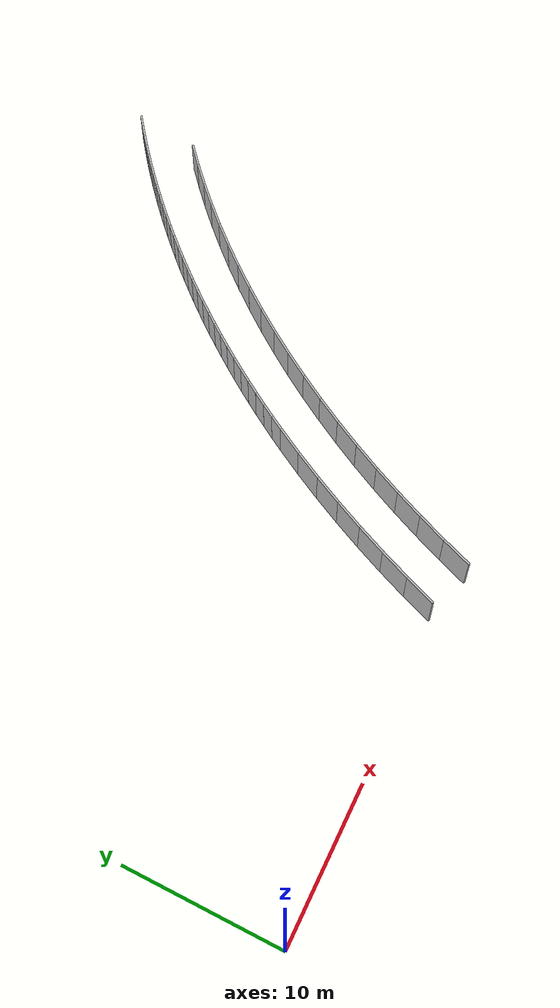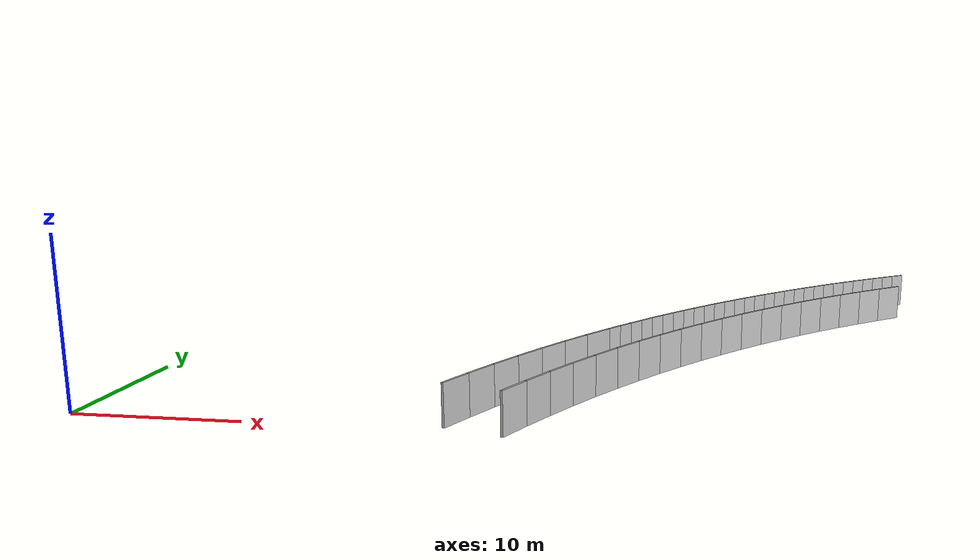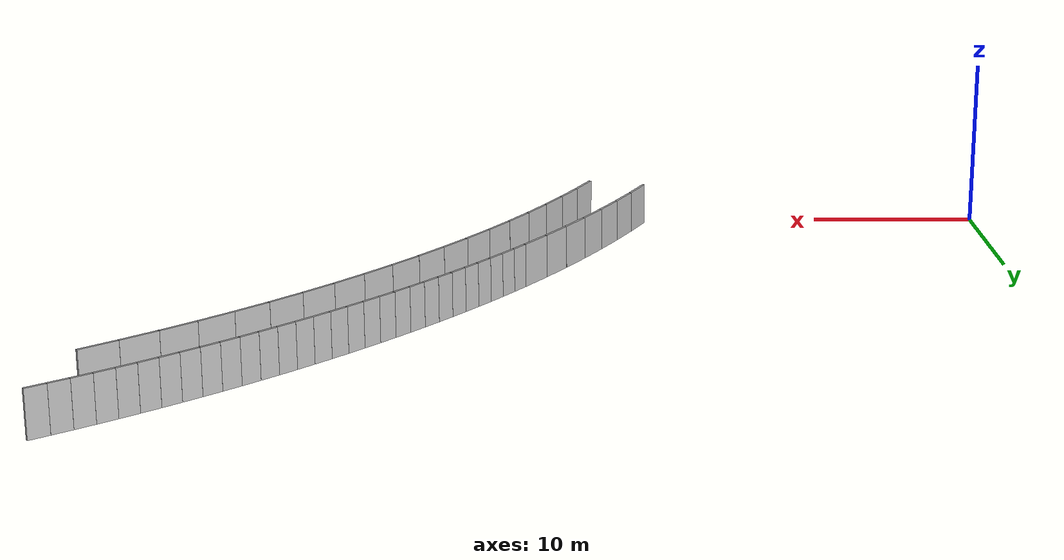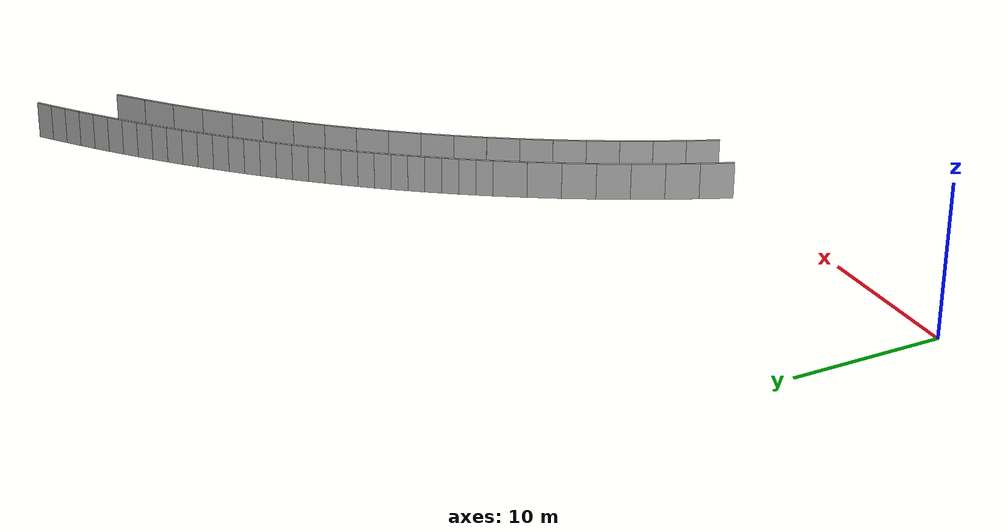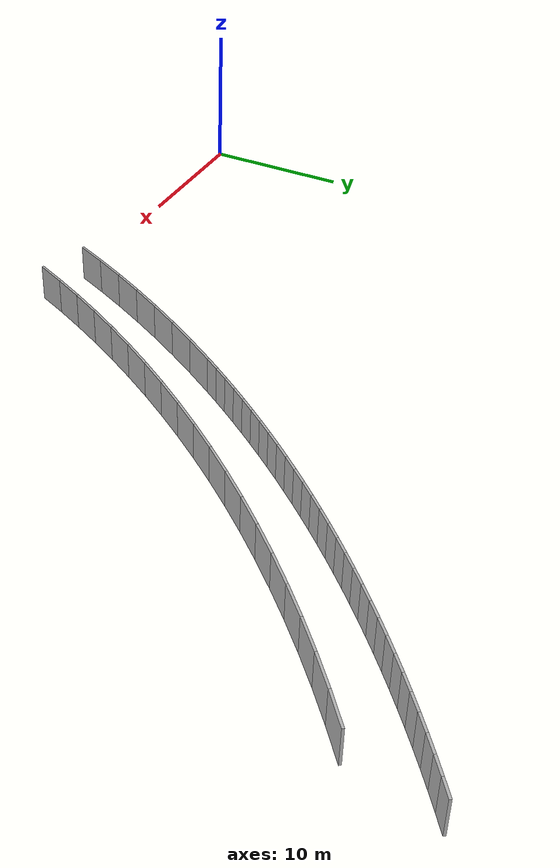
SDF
<?xml version="1.0" ?>
<sdf version="1.6">
  <model name="sps_1204">
    <pose frame="">0 0 0 0 -0 0</pose>
    <static>1</static>
    <self_collide>0</self_collide>
    <allow_auto_disable>0</allow_auto_disable>
    <link name="Wall1617">
      <kinematic>0</kinematic>
      <gravity>1</gravity>
      <self_collide>0</self_collide>
      <collision name="collision">
        <geometry>
          <box>
            <size>2.22094 0.15 2.5</size>
          </box>
        </geometry>
        <pose frame="">0 0 0 0 -0 0</pose>
      </collision>
      <visual name="visual">
        <geometry>
          <box>
            <size>2.22094 0.15 2.5</size>
          </box>
        </geometry>
        <pose frame="">0 0 0 0 -0 0</pose>
        <cast_shadows>1</cast_shadows>
        <transparency>0.0</transparency>
      </visual>
      <pose frame="">21.4795 1.55992 1.25 0 -0 1.16072</pose>
    </link>
    <link name="Wall1618">
      <kinematic>0</kinematic>
      <gravity>1</gravity>
      <self_collide>0</self_collide>
      <collision name="collision">
        <geometry>
          <box>
            <size>2.22094 0.15 2.5</size>
          </box>
        </geometry>
        <pose frame="">0 0 0 0 -0 0</pose>
      </collision>
      <visual name="visual">
        <geometry>
          <box>
            <size>2.22094 0.15 2.5</size>
          </box>
        </geometry>
        <pose frame="">0 0 0 0 -0 0</pose>
        <cast_shadows>1</cast_shadows>
        <transparency>0.0</transparency>
      </visual>
      <pose frame="">22.3906 3.58522 1.25 0 -0 1.13547</pose>
    </link>
    <link name="Wall1619">
      <kinematic>0</kinematic>
      <gravity>1</gravity>
      <self_collide>0</self_collide>
      <collision name="collision">
        <geometry>
          <box>
            <size>2.22085 0.15 2.5</size>
          </box>
        </geometry>
        <pose frame="">0 0 0 0 -0 0</pose>
      </collision>
      <visual name="visual">
        <geometry>
          <box>
            <size>2.22085 0.15 2.5</size>
          </box>
        </geometry>
        <pose frame="">0 0 0 0 -0 0</pose>
        <cast_shadows>1</cast_shadows>
        <transparency>0.0</transparency>
      </visual>
      <pose frame="">23.3524 5.58681 1.25 0 -0 1.11017</pose>
    </link>
    <link name="Wall1620">
      <kinematic>0</kinematic>
      <gravity>1</gravity>
      <self_collide>0</self_collide>
      <collision name="collision">
        <geometry>
          <box>
            <size>2.2209 0.15 2.5</size>
          </box>
        </geometry>
        <pose frame="">0 0 0 0 -0 0</pose>
      </collision>
      <visual name="visual">
        <geometry>
          <box>
            <size>2.2209 0.15 2.5</size>
          </box>
        </geometry>
        <pose frame="">0 0 0 0 -0 0</pose>
        <cast_shadows>1</cast_shadows>
        <transparency>0.0</transparency>
      </visual>
      <pose frame="">24.3646 7.5634 1.25 0 -0 1.08486</pose>
    </link>
    <link name="Wall1621">
      <kinematic>0</kinematic>
      <gravity>1</gravity>
      <self_collide>0</self_collide>
      <collision name="collision">
        <geometry>
          <box>
            <size>2.22102 0.15 2.5</size>
          </box>
        </geometry>
        <pose frame="">0 0 0 0 -0 0</pose>
      </collision>
      <visual name="visual">
        <geometry>
          <box>
            <size>2.22102 0.15 2.5</size>
          </box>
        </geometry>
        <pose frame="">0 0 0 0 -0 0</pose>
        <cast_shadows>1</cast_shadows>
        <transparency>0.0</transparency>
      </visual>
      <pose frame="">25.4264 9.5139 1.25 0 -0 1.0597</pose>
    </link>
    <link name="Wall1622">
      <kinematic>0</kinematic>
      <gravity>1</gravity>
      <self_collide>0</self_collide>
      <collision name="collision">
        <geometry>
          <box>
            <size>2.22108 0.15 2.5</size>
          </box>
        </geometry>
        <pose frame="">0 0 0 0 -0 0</pose>
      </collision>
      <visual name="visual">
        <geometry>
          <box>
            <size>2.22108 0.15 2.5</size>
          </box>
        </geometry>
        <pose frame="">0 0 0 0 -0 0</pose>
        <cast_shadows>1</cast_shadows>
        <transparency>0.0</transparency>
      </visual>
      <pose frame="">26.5371 11.4371 1.25 0 -0 1.03443</pose>
    </link>
    <link name="Wall1623">
      <kinematic>0</kinematic>
      <gravity>1</gravity>
      <self_collide>0</self_collide>
      <collision name="collision">
        <geometry>
          <box>
            <size>2.22088 0.15 2.5</size>
          </box>
        </geometry>
        <pose frame="">0 0 0 0 -0 0</pose>
      </collision>
      <visual name="visual">
        <geometry>
          <box>
            <size>2.22088 0.15 2.5</size>
          </box>
        </geometry>
        <pose frame="">0 0 0 0 -0 0</pose>
        <cast_shadows>1</cast_shadows>
        <transparency>0.0</transparency>
      </visual>
      <pose frame="">27.6959 13.3316 1.25 0 -0 1.00925</pose>
    </link>
    <link name="Wall1624">
      <kinematic>0</kinematic>
      <gravity>1</gravity>
      <self_collide>0</self_collide>
      <collision name="collision">
        <geometry>
          <box>
            <size>1.11048 0.15 2.5</size>
          </box>
        </geometry>
        <pose frame="">0 0 0 0 -0 0</pose>
      </collision>
      <visual name="visual">
        <geometry>
          <box>
            <size>1.11048 0.15 2.5</size>
          </box>
        </geometry>
        <pose frame="">0 0 0 0 -0 0</pose>
        <cast_shadows>1</cast_shadows>
        <transparency>0.0</transparency>
      </visual>
      <pose frame="">28.5918 14.7358 1.25 0 -0 0.990324</pose>
    </link>
    <link name="Wall1625">
      <kinematic>0</kinematic>
      <gravity>1</gravity>
      <self_collide>0</self_collide>
      <collision name="collision">
        <geometry>
          <box>
            <size>1.11035 0.15 2.5</size>
          </box>
        </geometry>
        <pose frame="">0 0 0 0 -0 0</pose>
      </collision>
      <visual name="visual">
        <geometry>
          <box>
            <size>1.11035 0.15 2.5</size>
          </box>
        </geometry>
        <pose frame="">0 0 0 0 -0 0</pose>
        <cast_shadows>1</cast_shadows>
        <transparency>0.0</transparency>
      </visual>
      <pose frame="">29.2067 15.6604 1.25 0 -0 0.977503</pose>
    </link>
    <link name="Wall1626">
      <kinematic>0</kinematic>
      <gravity>1</gravity>
      <self_collide>0</self_collide>
      <collision name="collision">
        <geometry>
          <box>
            <size>1.11049 0.15 2.5</size>
          </box>
        </geometry>
        <pose frame="">0 0 0 0 -0 0</pose>
      </collision>
      <visual name="visual">
        <geometry>
          <box>
            <size>1.11049 0.15 2.5</size>
          </box>
        </geometry>
        <pose frame="">0 0 0 0 -0 0</pose>
        <cast_shadows>1</cast_shadows>
        <transparency>0.0</transparency>
      </visual>
      <pose frame="">29.8332 16.5771 1.25 0 -0 0.964942</pose>
    </link>
    <link name="Wall1627">
      <kinematic>0</kinematic>
      <gravity>1</gravity>
      <self_collide>0</self_collide>
      <collision name="collision">
        <geometry>
          <box>
            <size>1.1106 0.15 2.5</size>
          </box>
        </geometry>
        <pose frame="">0 0 0 0 -0 0</pose>
      </collision>
      <visual name="visual">
        <geometry>
          <box>
            <size>1.1106 0.15 2.5</size>
          </box>
        </geometry>
        <pose frame="">0 0 0 0 -0 0</pose>
        <cast_shadows>1</cast_shadows>
        <transparency>0.0</transparency>
      </visual>
      <pose frame="">30.4715 17.4859 1.25 0 -0 0.952182</pose>
    </link>
    <link name="Wall1628">
      <kinematic>0</kinematic>
      <gravity>1</gravity>
      <self_collide>0</self_collide>
      <collision name="collision">
        <geometry>
          <box>
            <size>1.11027 0.15 2.5</size>
          </box>
        </geometry>
        <pose frame="">0 0 0 0 -0 0</pose>
      </collision>
      <visual name="visual">
        <geometry>
          <box>
            <size>1.11027 0.15 2.5</size>
          </box>
        </geometry>
        <pose frame="">0 0 0 0 -0 0</pose>
        <cast_shadows>1</cast_shadows>
        <transparency>0.0</transparency>
      </visual>
      <pose frame="">31.1211 18.3865 1.25 0 -0 0.939632</pose>
    </link>
    <link name="Wall1629">
      <kinematic>0</kinematic>
      <gravity>1</gravity>
      <self_collide>0</self_collide>
      <collision name="collision">
        <geometry>
          <box>
            <size>1.11061 0.15 2.5</size>
          </box>
        </geometry>
        <pose frame="">0 0 0 0 -0 0</pose>
      </collision>
      <visual name="visual">
        <geometry>
          <box>
            <size>1.11061 0.15 2.5</size>
          </box>
        </geometry>
        <pose frame="">0 0 0 0 -0 0</pose>
        <cast_shadows>1</cast_shadows>
        <transparency>0.0</transparency>
      </visual>
      <pose frame="">31.7819 19.2789 1.25 0 -0 0.927207</pose>
    </link>
    <link name="Wall1630">
      <kinematic>0</kinematic>
      <gravity>1</gravity>
      <self_collide>0</self_collide>
      <collision name="collision">
        <geometry>
          <box>
            <size>1.11051 0.15 2.5</size>
          </box>
        </geometry>
        <pose frame="">0 0 0 0 -0 0</pose>
      </collision>
      <visual name="visual">
        <geometry>
          <box>
            <size>1.11051 0.15 2.5</size>
          </box>
        </geometry>
        <pose frame="">0 0 0 0 -0 0</pose>
        <cast_shadows>1</cast_shadows>
        <transparency>0.0</transparency>
      </visual>
      <pose frame="">32.4538 20.1631 1.25 0 -0 0.914786</pose>
    </link>
    <link name="Wall1631">
      <kinematic>0</kinematic>
      <gravity>1</gravity>
      <self_collide>0</self_collide>
      <collision name="collision">
        <geometry>
          <box>
            <size>1.11064 0.15 2.5</size>
          </box>
        </geometry>
        <pose frame="">0 0 0 0 -0 0</pose>
      </collision>
      <visual name="visual">
        <geometry>
          <box>
            <size>1.11064 0.15 2.5</size>
          </box>
        </geometry>
        <pose frame="">0 0 0 0 -0 0</pose>
        <cast_shadows>1</cast_shadows>
        <transparency>0.0</transparency>
      </visual>
      <pose frame="">33.1369 21.0387 1.25 0 -0 0.901771</pose>
    </link>
    <link name="Wall1632">
      <kinematic>0</kinematic>
      <gravity>1</gravity>
      <self_collide>0</self_collide>
      <collision name="collision">
        <geometry>
          <box>
            <size>1.11042 0.15 2.5</size>
          </box>
        </geometry>
        <pose frame="">0 0 0 0 -0 0</pose>
      </collision>
      <visual name="visual">
        <geometry>
          <box>
            <size>1.11042 0.15 2.5</size>
          </box>
        </geometry>
        <pose frame="">0 0 0 0 -0 0</pose>
        <cast_shadows>1</cast_shadows>
        <transparency>0.0</transparency>
      </visual>
      <pose frame="">33.8312 21.9054 1.25 0 -0 0.889008</pose>
    </link>
    <link name="Wall1633">
      <kinematic>0</kinematic>
      <gravity>1</gravity>
      <self_collide>0</self_collide>
      <collision name="collision">
        <geometry>
          <box>
            <size>1.11037 0.15 2.5</size>
          </box>
        </geometry>
        <pose frame="">0 0 0 0 -0 0</pose>
      </collision>
      <visual name="visual">
        <geometry>
          <box>
            <size>1.11037 0.15 2.5</size>
          </box>
        </geometry>
        <pose frame="">0 0 0 0 -0 0</pose>
        <cast_shadows>1</cast_shadows>
        <transparency>0.0</transparency>
      </visual>
      <pose frame="">34.5362 22.7632 1.25 0 -0 0.876593</pose>
    </link>
    <link name="Wall1634">
      <kinematic>0</kinematic>
      <gravity>1</gravity>
      <self_collide>0</self_collide>
      <collision name="collision">
        <geometry>
          <box>
            <size>1.11048 0.15 2.5</size>
          </box>
        </geometry>
        <pose frame="">0 0 0 0 -0 0</pose>
      </collision>
      <visual name="visual">
        <geometry>
          <box>
            <size>1.11048 0.15 2.5</size>
          </box>
        </geometry>
        <pose frame="">0 0 0 0 -0 0</pose>
        <cast_shadows>1</cast_shadows>
        <transparency>0.0</transparency>
      </visual>
      <pose frame="">35.252 23.6121 1.25 0 -0 0.863947</pose>
    </link>
    <link name="Wall1635">
      <kinematic>0</kinematic>
      <gravity>1</gravity>
      <self_collide>0</self_collide>
      <collision name="collision">
        <geometry>
          <box>
            <size>1.11047 0.15 2.5</size>
          </box>
        </geometry>
        <pose frame="">0 0 0 0 -0 0</pose>
      </collision>
      <visual name="visual">
        <geometry>
          <box>
            <size>1.11047 0.15 2.5</size>
          </box>
        </geometry>
        <pose frame="">0 0 0 0 -0 0</pose>
        <cast_shadows>1</cast_shadows>
        <transparency>0.0</transparency>
      </visual>
      <pose frame="">35.9784 24.452 1.25 0 -0 0.851516</pose>
    </link>
    <link name="Wall1636">
      <kinematic>0</kinematic>
      <gravity>1</gravity>
      <self_collide>0</self_collide>
      <collision name="collision">
        <geometry>
          <box>
            <size>1.11046 0.15 2.5</size>
          </box>
        </geometry>
        <pose frame="">0 0 0 0 -0 0</pose>
      </collision>
      <visual name="visual">
        <geometry>
          <box>
            <size>1.11046 0.15 2.5</size>
          </box>
        </geometry>
        <pose frame="">0 0 0 0 -0 0</pose>
        <cast_shadows>1</cast_shadows>
        <transparency>0.0</transparency>
      </visual>
      <pose frame="">36.7153 25.2828 1.25 0 -0 0.839019</pose>
    </link>
    <link name="Wall1637">
      <kinematic>0</kinematic>
      <gravity>1</gravity>
      <self_collide>0</self_collide>
      <collision name="collision">
        <geometry>
          <box>
            <size>1.11065 0.15 2.5</size>
          </box>
        </geometry>
        <pose frame="">0 0 0 0 -0 0</pose>
      </collision>
      <visual name="visual">
        <geometry>
          <box>
            <size>1.11065 0.15 2.5</size>
          </box>
        </geometry>
        <pose frame="">0 0 0 0 -0 0</pose>
        <cast_shadows>1</cast_shadows>
        <transparency>0.0</transparency>
      </visual>
      <pose frame="">37.4627 26.1042 1.25 0 -0 0.826017</pose>
    </link>
    <link name="Wall1638">
      <kinematic>0</kinematic>
      <gravity>1</gravity>
      <self_collide>0</self_collide>
      <collision name="collision">
        <geometry>
          <box>
            <size>1.11047 0.15 2.5</size>
          </box>
        </geometry>
        <pose frame="">0 0 0 0 -0 0</pose>
      </collision>
      <visual name="visual">
        <geometry>
          <box>
            <size>1.11047 0.15 2.5</size>
          </box>
        </geometry>
        <pose frame="">0 0 0 0 -0 0</pose>
        <cast_shadows>1</cast_shadows>
        <transparency>0.0</transparency>
      </visual>
      <pose frame="">38.2206 26.9159 1.25 0 -0 0.813307</pose>
    </link>
    <link name="Wall1639">
      <kinematic>0</kinematic>
      <gravity>1</gravity>
      <self_collide>0</self_collide>
      <collision name="collision">
        <geometry>
          <box>
            <size>1.11042 0.15 2.5</size>
          </box>
        </geometry>
        <pose frame="">0 0 0 0 -0 0</pose>
      </collision>
      <visual name="visual">
        <geometry>
          <box>
            <size>1.11042 0.15 2.5</size>
          </box>
        </geometry>
        <pose frame="">0 0 0 0 -0 0</pose>
        <cast_shadows>1</cast_shadows>
        <transparency>0.0</transparency>
      </visual>
      <pose frame="">38.9886 27.7179 1.25 0 -0 0.80079</pose>
    </link>
    <link name="Wall1640">
      <kinematic>0</kinematic>
      <gravity>1</gravity>
      <self_collide>0</self_collide>
      <collision name="collision">
        <geometry>
          <box>
            <size>1.11043 0.15 2.5</size>
          </box>
        </geometry>
        <pose frame="">0 0 0 0 -0 0</pose>
      </collision>
      <visual name="visual">
        <geometry>
          <box>
            <size>1.11043 0.15 2.5</size>
          </box>
        </geometry>
        <pose frame="">0 0 0 0 -0 0</pose>
        <cast_shadows>1</cast_shadows>
        <transparency>0.0</transparency>
      </visual>
      <pose frame="">39.7666 28.5102 1.25 0 -0 0.788235</pose>
    </link>
    <link name="Wall1641">
      <kinematic>0</kinematic>
      <gravity>1</gravity>
      <self_collide>0</self_collide>
      <collision name="collision">
        <geometry>
          <box>
            <size>1.11052 0.15 2.5</size>
          </box>
        </geometry>
        <pose frame="">0 0 0 0 -0 0</pose>
      </collision>
      <visual name="visual">
        <geometry>
          <box>
            <size>1.11052 0.15 2.5</size>
          </box>
        </geometry>
        <pose frame="">0 0 0 0 -0 0</pose>
        <cast_shadows>1</cast_shadows>
        <transparency>0.0</transparency>
      </visual>
      <pose frame="">40.5546 29.2926 1.25 0 -0 0.775449</pose>
    </link>
    <link name="Wall1642">
      <kinematic>0</kinematic>
      <gravity>1</gravity>
      <self_collide>0</self_collide>
      <collision name="collision">
        <geometry>
          <box>
            <size>1.11039 0.15 2.5</size>
          </box>
        </geometry>
        <pose frame="">0 0 0 0 -0 0</pose>
      </collision>
      <visual name="visual">
        <geometry>
          <box>
            <size>1.11039 0.15 2.5</size>
          </box>
        </geometry>
        <pose frame="">0 0 0 0 -0 0</pose>
        <cast_shadows>1</cast_shadows>
        <transparency>0.0</transparency>
      </visual>
      <pose frame="">41.3523 30.0651 1.25 0 -0 0.763242</pose>
    </link>
    <link name="Wall1643">
      <kinematic>0</kinematic>
      <gravity>1</gravity>
      <self_collide>0</self_collide>
      <collision name="collision">
        <geometry>
          <box>
            <size>1.11041 0.15 2.5</size>
          </box>
        </geometry>
        <pose frame="">0 0 0 0 -0 0</pose>
      </collision>
      <visual name="visual">
        <geometry>
          <box>
            <size>1.11041 0.15 2.5</size>
          </box>
        </geometry>
        <pose frame="">0 0 0 0 -0 0</pose>
        <cast_shadows>1</cast_shadows>
        <transparency>0.0</transparency>
      </visual>
      <pose frame="">42.1595 30.8275 1.25 0 -0 0.750372</pose>
    </link>
    <link name="Wall1644">
      <kinematic>0</kinematic>
      <gravity>1</gravity>
      <self_collide>0</self_collide>
      <collision name="collision">
        <geometry>
          <box>
            <size>1.11074 0.15 2.5</size>
          </box>
        </geometry>
        <pose frame="">0 0 0 0 -0 0</pose>
      </collision>
      <visual name="visual">
        <geometry>
          <box>
            <size>1.11074 0.15 2.5</size>
          </box>
        </geometry>
        <pose frame="">0 0 0 0 -0 0</pose>
        <cast_shadows>1</cast_shadows>
        <transparency>0.0</transparency>
      </visual>
      <pose frame="">42.9766 31.5796 1.25 0 -0 0.737627</pose>
    </link>
    <link name="Wall1645">
      <kinematic>0</kinematic>
      <gravity>1</gravity>
      <self_collide>0</self_collide>
      <collision name="collision">
        <geometry>
          <box>
            <size>1.11034 0.15 2.5</size>
          </box>
        </geometry>
        <pose frame="">0 0 0 0 -0 0</pose>
      </collision>
      <visual name="visual">
        <geometry>
          <box>
            <size>1.11034 0.15 2.5</size>
          </box>
        </geometry>
        <pose frame="">0 0 0 0 -0 0</pose>
        <cast_shadows>1</cast_shadows>
        <transparency>0.0</transparency>
      </visual>
      <pose frame="">43.8032 32.3212 1.25 0 -0 0.72488</pose>
    </link>
    <link name="Wall1646">
      <kinematic>0</kinematic>
      <gravity>1</gravity>
      <self_collide>0</self_collide>
      <collision name="collision">
        <geometry>
          <box>
            <size>1.11057 0.15 2.5</size>
          </box>
        </geometry>
        <pose frame="">0 0 0 0 -0 0</pose>
      </collision>
      <visual name="visual">
        <geometry>
          <box>
            <size>1.11057 0.15 2.5</size>
          </box>
        </geometry>
        <pose frame="">0 0 0 0 -0 0</pose>
        <cast_shadows>1</cast_shadows>
        <transparency>0.0</transparency>
      </visual>
      <pose frame="">44.639 33.0523 1.25 0 -0 0.712507</pose>
    </link>
    <link name="Wall1647">
      <kinematic>0</kinematic>
      <gravity>1</gravity>
      <self_collide>0</self_collide>
      <collision name="collision">
        <geometry>
          <box>
            <size>1.11055 0.15 2.5</size>
          </box>
        </geometry>
        <pose frame="">0 0 0 0 -0 0</pose>
      </collision>
      <visual name="visual">
        <geometry>
          <box>
            <size>1.11055 0.15 2.5</size>
          </box>
        </geometry>
        <pose frame="">0 0 0 0 -0 0</pose>
        <cast_shadows>1</cast_shadows>
        <transparency>0.0</transparency>
      </visual>
      <pose frame="">45.4839 33.773 1.25 0 -0 0.699953</pose>
    </link>
    <link name="Wall1648">
      <kinematic>0</kinematic>
      <gravity>1</gravity>
      <self_collide>0</self_collide>
      <collision name="collision">
        <geometry>
          <box>
            <size>1.1104 0.15 2.5</size>
          </box>
        </geometry>
        <pose frame="">0 0 0 0 -0 0</pose>
      </collision>
      <visual name="visual">
        <geometry>
          <box>
            <size>1.1104 0.15 2.5</size>
          </box>
        </geometry>
        <pose frame="">0 0 0 0 -0 0</pose>
        <cast_shadows>1</cast_shadows>
        <transparency>0.0</transparency>
      </visual>
      <pose frame="">46.3378 34.483 1.25 0 -0 0.687412</pose>
    </link>
    <link name="Wall1649">
      <kinematic>0</kinematic>
      <gravity>1</gravity>
      <self_collide>0</self_collide>
      <collision name="collision">
        <geometry>
          <box>
            <size>1.11045 0.15 2.5</size>
          </box>
        </geometry>
        <pose frame="">0 0 0 0 -0 0</pose>
      </collision>
      <visual name="visual">
        <geometry>
          <box>
            <size>1.11045 0.15 2.5</size>
          </box>
        </geometry>
        <pose frame="">0 0 0 0 -0 0</pose>
        <cast_shadows>1</cast_shadows>
        <transparency>0.0</transparency>
      </visual>
      <pose frame="">47.2005 35.1821 1.25 0 -0 0.674638</pose>
    </link>
    <link name="Wall1650">
      <kinematic>0</kinematic>
      <gravity>1</gravity>
      <self_collide>0</self_collide>
      <collision name="collision">
        <geometry>
          <box>
            <size>1.11043 0.15 2.5</size>
          </box>
        </geometry>
        <pose frame="">0 0 0 0 -0 0</pose>
      </collision>
      <visual name="visual">
        <geometry>
          <box>
            <size>1.11043 0.15 2.5</size>
          </box>
        </geometry>
        <pose frame="">0 0 0 0 -0 0</pose>
        <cast_shadows>1</cast_shadows>
        <transparency>0.0</transparency>
      </visual>
      <pose frame="">48.072 35.8701 1.25 0 -0 0.661839</pose>
    </link>
    <link name="Wall1651">
      <kinematic>0</kinematic>
      <gravity>1</gravity>
      <self_collide>0</self_collide>
      <collision name="collision">
        <geometry>
          <box>
            <size>1.11056 0.15 2.5</size>
          </box>
        </geometry>
        <pose frame="">0 0 0 0 -0 0</pose>
      </collision>
      <visual name="visual">
        <geometry>
          <box>
            <size>1.11056 0.15 2.5</size>
          </box>
        </geometry>
        <pose frame="">0 0 0 0 -0 0</pose>
        <cast_shadows>1</cast_shadows>
        <transparency>0.0</transparency>
      </visual>
      <pose frame="">48.9524 36.547 1.25 0 -0 0.649195</pose>
    </link>
    <link name="Wall1652">
      <kinematic>0</kinematic>
      <gravity>1</gravity>
      <self_collide>0</self_collide>
      <collision name="collision">
        <geometry>
          <box>
            <size>1.11036 0.15 2.5</size>
          </box>
        </geometry>
        <pose frame="">0 0 0 0 -0 0</pose>
      </collision>
      <visual name="visual">
        <geometry>
          <box>
            <size>1.11036 0.15 2.5</size>
          </box>
        </geometry>
        <pose frame="">0 0 0 0 -0 0</pose>
        <cast_shadows>1</cast_shadows>
        <transparency>0.0</transparency>
      </visual>
      <pose frame="">49.8411 37.2128 1.25 0 -0 0.636762</pose>
    </link>
    <link name="Wall1756">
      <kinematic>0</kinematic>
      <gravity>1</gravity>
      <self_collide>0</self_collide>
      <collision name="collision">
        <geometry>
          <box>
            <size>2.18204 0.15 2.5</size>
          </box>
        </geometry>
        <pose frame="">0 0 0 0 -0 0</pose>
      </collision>
      <visual name="visual">
        <geometry>
          <box>
            <size>2.18204 0.15 2.5</size>
          </box>
        </geometry>
        <pose frame="">0 0 0 0 -0 0</pose>
        <cast_shadows>1</cast_shadows>
        <transparency>0.0</transparency>
      </visual>
      <pose frame="">48.3379 31.5887 1.25 0 0 -2.45096</pose>
    </link>
    <link name="Wall1757">
      <kinematic>0</kinematic>
      <gravity>1</gravity>
      <self_collide>0</self_collide>
      <collision name="collision">
        <geometry>
          <box>
            <size>2.18191 0.15 2.5</size>
          </box>
        </geometry>
        <pose frame="">0 0 0 0 -0 0</pose>
      </collision>
      <visual name="visual">
        <geometry>
          <box>
            <size>2.18191 0.15 2.5</size>
          </box>
        </geometry>
        <pose frame="">0 0 0 0 -0 0</pose>
        <cast_shadows>1</cast_shadows>
        <transparency>0.0</transparency>
      </visual>
      <pose frame="">46.6742 30.1772 1.25 0 0 -2.42508</pose>
    </link>
    <link name="Wall1758">
      <kinematic>0</kinematic>
      <gravity>1</gravity>
      <self_collide>0</self_collide>
      <collision name="collision">
        <geometry>
          <box>
            <size>2.18191 0.15 2.5</size>
          </box>
        </geometry>
        <pose frame="">0 0 0 0 -0 0</pose>
      </collision>
      <visual name="visual">
        <geometry>
          <box>
            <size>2.18191 0.15 2.5</size>
          </box>
        </geometry>
        <pose frame="">0 0 0 0 -0 0</pose>
        <cast_shadows>1</cast_shadows>
        <transparency>0.0</transparency>
      </visual>
      <pose frame="">45.0476 28.7232 1.25 0 0 -2.39923</pose>
    </link>
    <link name="Wall1759">
      <kinematic>0</kinematic>
      <gravity>1</gravity>
      <self_collide>0</self_collide>
      <collision name="collision">
        <geometry>
          <box>
            <size>2.18189 0.15 2.5</size>
          </box>
        </geometry>
        <pose frame="">0 0 0 0 -0 0</pose>
      </collision>
      <visual name="visual">
        <geometry>
          <box>
            <size>2.18189 0.15 2.5</size>
          </box>
        </geometry>
        <pose frame="">0 0 0 0 -0 0</pose>
        <cast_shadows>1</cast_shadows>
        <transparency>0.0</transparency>
      </visual>
      <pose frame="">43.4591 27.2277 1.25 0 0 -2.37344</pose>
    </link>
    <link name="Wall1760">
      <kinematic>0</kinematic>
      <gravity>1</gravity>
      <self_collide>0</self_collide>
      <collision name="collision">
        <geometry>
          <box>
            <size>2.18191 0.15 2.5</size>
          </box>
        </geometry>
        <pose frame="">0 0 0 0 -0 0</pose>
      </collision>
      <visual name="visual">
        <geometry>
          <box>
            <size>2.18191 0.15 2.5</size>
          </box>
        </geometry>
        <pose frame="">0 0 0 0 -0 0</pose>
        <cast_shadows>1</cast_shadows>
        <transparency>0.0</transparency>
      </visual>
      <pose frame="">41.9097 25.6917 1.25 0 0 -2.34765</pose>
    </link>
    <link name="Wall1761">
      <kinematic>0</kinematic>
      <gravity>1</gravity>
      <self_collide>0</self_collide>
      <collision name="collision">
        <geometry>
          <box>
            <size>2.18191 0.15 2.5</size>
          </box>
        </geometry>
        <pose frame="">0 0 0 0 -0 0</pose>
      </collision>
      <visual name="visual">
        <geometry>
          <box>
            <size>2.18191 0.15 2.5</size>
          </box>
        </geometry>
        <pose frame="">0 0 0 0 -0 0</pose>
        <cast_shadows>1</cast_shadows>
        <transparency>0.0</transparency>
      </visual>
      <pose frame="">40.4004 24.1162 1.25 0 0 -2.32177</pose>
    </link>
    <link name="Wall1762">
      <kinematic>0</kinematic>
      <gravity>1</gravity>
      <self_collide>0</self_collide>
      <collision name="collision">
        <geometry>
          <box>
            <size>2.18195 0.15 2.5</size>
          </box>
        </geometry>
        <pose frame="">0 0 0 0 -0 0</pose>
      </collision>
      <visual name="visual">
        <geometry>
          <box>
            <size>2.18195 0.15 2.5</size>
          </box>
        </geometry>
        <pose frame="">0 0 0 0 -0 0</pose>
        <cast_shadows>1</cast_shadows>
        <transparency>0.0</transparency>
      </visual>
      <pose frame="">38.9325 22.5022 1.25 0 0 -2.29593</pose>
    </link>
    <link name="Wall1763">
      <kinematic>0</kinematic>
      <gravity>1</gravity>
      <self_collide>0</self_collide>
      <collision name="collision">
        <geometry>
          <box>
            <size>2.18189 0.15 2.5</size>
          </box>
        </geometry>
        <pose frame="">0 0 0 0 -0 0</pose>
      </collision>
      <visual name="visual">
        <geometry>
          <box>
            <size>2.18189 0.15 2.5</size>
          </box>
        </geometry>
        <pose frame="">0 0 0 0 -0 0</pose>
        <cast_shadows>1</cast_shadows>
        <transparency>0.0</transparency>
      </visual>
      <pose frame="">37.5067 20.8508 1.25 0 0 -2.27008</pose>
    </link>
    <link name="Wall1764">
      <kinematic>0</kinematic>
      <gravity>1</gravity>
      <self_collide>0</self_collide>
      <collision name="collision">
        <geometry>
          <box>
            <size>2.18213 0.15 2.5</size>
          </box>
        </geometry>
        <pose frame="">0 0 0 0 -0 0</pose>
      </collision>
      <visual name="visual">
        <geometry>
          <box>
            <size>2.18213 0.15 2.5</size>
          </box>
        </geometry>
        <pose frame="">0 0 0 0 -0 0</pose>
        <cast_shadows>1</cast_shadows>
        <transparency>0.0</transparency>
      </visual>
      <pose frame="">36.124 19.163 1.25 0 0 -2.24417</pose>
    </link>
    <link name="Wall1765">
      <kinematic>0</kinematic>
      <gravity>1</gravity>
      <self_collide>0</self_collide>
      <collision name="collision">
        <geometry>
          <box>
            <size>2.18182 0.15 2.5</size>
          </box>
        </geometry>
        <pose frame="">0 0 0 0 -0 0</pose>
      </collision>
      <visual name="visual">
        <geometry>
          <box>
            <size>2.18182 0.15 2.5</size>
          </box>
        </geometry>
        <pose frame="">0 0 0 0 -0 0</pose>
        <cast_shadows>1</cast_shadows>
        <transparency>0.0</transparency>
      </visual>
      <pose frame="">34.7855 17.4401 1.25 0 0 -2.21846</pose>
    </link>
    <link name="Wall1766">
      <kinematic>0</kinematic>
      <gravity>1</gravity>
      <self_collide>0</self_collide>
      <collision name="collision">
        <geometry>
          <box>
            <size>2.18196 0.15 2.5</size>
          </box>
        </geometry>
        <pose frame="">0 0 0 0 -0 0</pose>
      </collision>
      <visual name="visual">
        <geometry>
          <box>
            <size>2.18196 0.15 2.5</size>
          </box>
        </geometry>
        <pose frame="">0 0 0 0 -0 0</pose>
        <cast_shadows>1</cast_shadows>
        <transparency>0.0</transparency>
      </visual>
      <pose frame="">33.4918 15.6833 1.25 0 0 -2.1926</pose>
    </link>
    <link name="Wall1767">
      <kinematic>0</kinematic>
      <gravity>1</gravity>
      <self_collide>0</self_collide>
      <collision name="collision">
        <geometry>
          <box>
            <size>2.18191 0.15 2.5</size>
          </box>
        </geometry>
        <pose frame="">0 0 0 0 -0 0</pose>
      </collision>
      <visual name="visual">
        <geometry>
          <box>
            <size>2.18191 0.15 2.5</size>
          </box>
        </geometry>
        <pose frame="">0 0 0 0 -0 0</pose>
        <cast_shadows>1</cast_shadows>
        <transparency>0.0</transparency>
      </visual>
      <pose frame="">32.244 13.8936 1.25 0 0 -2.1667</pose>
    </link>
    <link name="Wall1768">
      <kinematic>0</kinematic>
      <gravity>1</gravity>
      <self_collide>0</self_collide>
      <collision name="collision">
        <geometry>
          <box>
            <size>2.18187 0.15 2.5</size>
          </box>
        </geometry>
        <pose frame="">0 0 0 0 -0 0</pose>
      </collision>
      <visual name="visual">
        <geometry>
          <box>
            <size>2.18187 0.15 2.5</size>
          </box>
        </geometry>
        <pose frame="">0 0 0 0 -0 0</pose>
        <cast_shadows>1</cast_shadows>
        <transparency>0.0</transparency>
      </visual>
      <pose frame="">31.0429 12.0723 1.25 0 0 -2.14091</pose>
    </link>
    <link name="Wall1769">
      <kinematic>0</kinematic>
      <gravity>1</gravity>
      <self_collide>0</self_collide>
      <collision name="collision">
        <geometry>
          <box>
            <size>2.18188 0.15 2.5</size>
          </box>
        </geometry>
        <pose frame="">0 0 0 0 -0 0</pose>
      </collision>
      <visual name="visual">
        <geometry>
          <box>
            <size>2.18188 0.15 2.5</size>
          </box>
        </geometry>
        <pose frame="">0 0 0 0 -0 0</pose>
        <cast_shadows>1</cast_shadows>
        <transparency>0.0</transparency>
      </visual>
      <pose frame="">29.8892 10.2206 1.25 0 0 -2.1151</pose>
    </link>
    <link name="Wall1770">
      <kinematic>0</kinematic>
      <gravity>1</gravity>
      <self_collide>0</self_collide>
      <collision name="collision">
        <geometry>
          <box>
            <size>2.18182 0.15 2.5</size>
          </box>
        </geometry>
        <pose frame="">0 0 0 0 -0 0</pose>
      </collision>
      <visual name="visual">
        <geometry>
          <box>
            <size>2.18182 0.15 2.5</size>
          </box>
        </geometry>
        <pose frame="">0 0 0 0 -0 0</pose>
        <cast_shadows>1</cast_shadows>
        <transparency>0.0</transparency>
      </visual>
      <pose frame="">28.7837 8.33971 1.25 0 0 -2.08915</pose>
    </link>
    <link name="Wall1771">
      <kinematic>0</kinematic>
      <gravity>1</gravity>
      <self_collide>0</self_collide>
      <collision name="collision">
        <geometry>
          <box>
            <size>2.18206 0.15 2.5</size>
          </box>
        </geometry>
        <pose frame="">0 0 0 0 -0 0</pose>
      </collision>
      <visual name="visual">
        <geometry>
          <box>
            <size>2.18206 0.15 2.5</size>
          </box>
        </geometry>
        <pose frame="">0 0 0 0 -0 0</pose>
        <cast_shadows>1</cast_shadows>
        <transparency>0.0</transparency>
      </visual>
      <pose frame="">27.7273 6.4308 1.25 0 0 -2.06342</pose>
    </link>
    <link name="Wall1772">
      <kinematic>0</kinematic>
      <gravity>1</gravity>
      <self_collide>0</self_collide>
      <collision name="collision">
        <geometry>
          <box>
            <size>2.18181 0.15 2.5</size>
          </box>
        </geometry>
        <pose frame="">0 0 0 0 -0 0</pose>
      </collision>
      <visual name="visual">
        <geometry>
          <box>
            <size>2.18181 0.15 2.5</size>
          </box>
        </geometry>
        <pose frame="">0 0 0 0 -0 0</pose>
        <cast_shadows>1</cast_shadows>
        <transparency>0.0</transparency>
      </visual>
      <pose frame="">26.7204 4.49528 1.25 0 0 -2.03756</pose>
    </link>
    <link name="Wall1773">
      <kinematic>0</kinematic>
      <gravity>1</gravity>
      <self_collide>0</self_collide>
      <collision name="collision">
        <geometry>
          <box>
            <size>2.18207 0.15 2.5</size>
          </box>
        </geometry>
        <pose frame="">0 0 0 0 -0 0</pose>
      </collision>
      <visual name="visual">
        <geometry>
          <box>
            <size>2.18207 0.15 2.5</size>
          </box>
        </geometry>
        <pose frame="">0 0 0 0 -0 0</pose>
        <cast_shadows>1</cast_shadows>
        <transparency>0.0</transparency>
      </visual>
      <pose frame="">25.7638 2.53438 1.25 0 0 -2.0117</pose>
    </link>
    <link name="Wall1774">
      <kinematic>0</kinematic>
      <gravity>1</gravity>
      <self_collide>0</self_collide>
      <collision name="collision">
        <geometry>
          <box>
            <size>2.18191 0.15 2.5</size>
          </box>
        </geometry>
        <pose frame="">0 0 0 0 -0 0</pose>
      </collision>
      <visual name="visual">
        <geometry>
          <box>
            <size>2.18191 0.15 2.5</size>
          </box>
        </geometry>
        <pose frame="">0 0 0 0 -0 0</pose>
        <cast_shadows>1</cast_shadows>
        <transparency>0.0</transparency>
      </visual>
      <pose frame="">24.8582 0.549392 1.25 0 0 -1.98594</pose>
    </link>
  </model>
</sdf>
